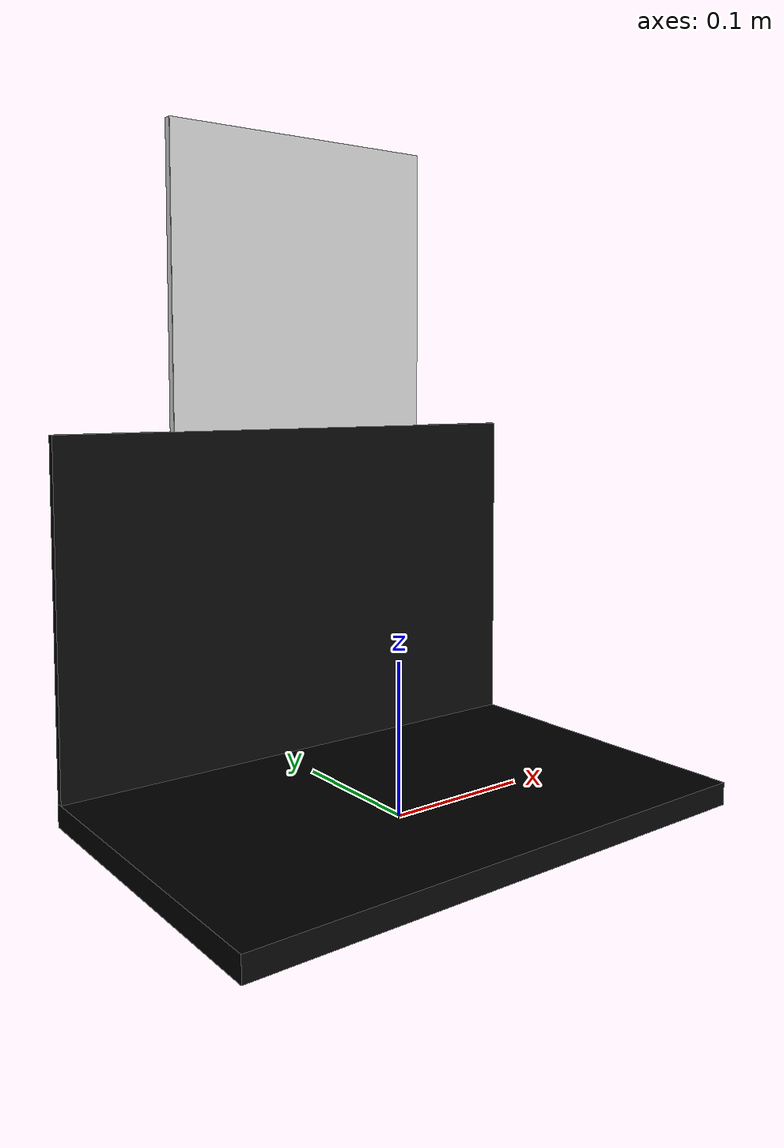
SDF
<?xml version="1.0"?>
<sdf version="1.6">
  <model name="station_a_laptop">
    <static>false</static>

    <link name="body">
      <gravity>false</gravity>
      <self_collide>false</self_collide>

      <inertial>
        <mass>1.0</mass>
        <inertia>
          <ixx>0.01</ixx>
          <iyy>0.01</iyy>
          <izz>0.01</izz>
          <ixy>0</ixy>
          <ixz>0</ixz>
          <iyz>0</iyz>
        </inertia>
      </inertial>

      <!-- Base -->
      <collision name="base_collision">
        <pose>0 0 0.0075 0 0 0</pose>
        <geometry><box><size>0.36 0.23 0.015</size></box></geometry>
      </collision>
      <visual name="base_visual">
        <pose>0 0 0.0075 0 0 0</pose>
        <geometry><box><size>0.36 0.23 0.015</size></box></geometry>
        <material><ambient>0.01 0.01 0.01 1</ambient><diffuse>0.01 0.01 0.01 1</diffuse></material>
      </visual>

      <!-- Screen -->
      <collision name="screen_collision">
        <pose>0 0.1125 0.13 0 0 0</pose>
        <geometry><box><size>0.36 0.005 0.23</size></box></geometry>
      </collision>
      <visual name="screen_visual">
        <pose>0 0.1125 0.13 0 0 0</pose>
        <geometry><box><size>0.36 0.005 0.23</size></box></geometry>
        <material><ambient>0.02 0.02 0.02 1</ambient><diffuse>0.02 0.02 0.02 1</diffuse></material>
      </visual>

      <!-- QR backing -->
      <collision name="qr_collision">
        <pose>0 0.1125 0.345 0 0 0</pose>
        <geometry><box><size>0.20 0.005 0.20</size></box></geometry>
      </collision>
      <visual name="qr_backing">
        <pose>0 0.1125 0.345 0 0 0</pose>
        <geometry><box><size>0.20 0.005 0.20</size></box></geometry>
        <material><ambient>1 1 1 1</ambient><diffuse>1 1 1 1</diffuse></material>
      </visual>

      <!-- QR image, vertical -->
      <visual name="qr_image">
        <pose>0 0.109 0.345 1.5708 0 0</pose>
        <geometry>
          <plane>
            <normal>0 0 1</normal>
            <size>0.20 0.20</size>
          </plane>
        </geometry>
        <material>
          <script>
            <uri>model://station_a_laptop/materials/scripts</uri>
            <uri>model://station_a_laptop/materials/textures</uri>
            <name>StationA/QR</name>
          </script>
        </material>
      </visual>

    </link>
  </model>
</sdf>
